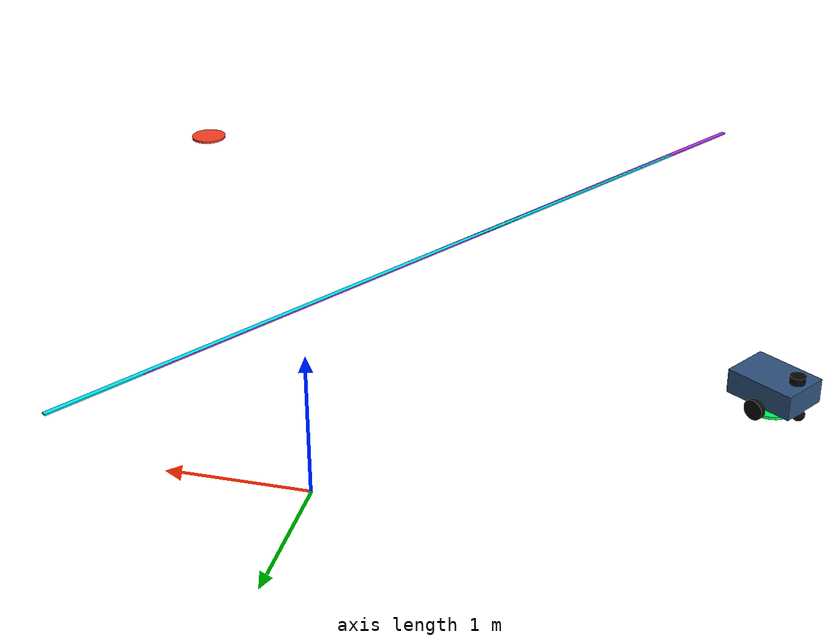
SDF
<sdf version="1.6">
 <world name="myworld2">
  <gravity>0 0 -9.8</gravity>
  <physics default="0" name="default_physics" type="ode">
   <max_step_size>0.001</max_step_size>
   <real_time_factor>1</real_time_factor>
   <real_time_update_rate>1000</real_time_update_rate>
  </physics>
  <plugin filename="ignition-gazebo-physics-system" name="ignition::gazebo::systems::Physics"/>
  <plugin filename="ignition-gazebo-user-commands-system" name="ignition::gazebo::systems::UserCommands"/>
  <plugin filename="ignition-gazebo-scene-broadcaster-system" name="ignition::gazebo::systems::SceneBroadcaster"/>
  <plugin filename="ignition-gazebo-contact-system" name="ignition::gazebo::systems::Contact"/>
  <plugin filename="libignition-gazebo-sensors-system.so" name="ignition::gazebo::systems::Sensors">
   <render_engine>ogre2</render_engine>
  </plugin>
  <plugin filename="libignition-gazebo-imu-system.so" name="ignition::gazebo::systems::Imu"/>
  <model name="fixed_path_demo_lane">
   <static>true</static>
   <link name="lane_visuals">
    <visual name="center_line">
     <pose>0.0 -3.55 0.015 0 0 -0.5838703956621151</pose>
     <geometry><box><size>0.03 6.7119296778 0.01</size></box></geometry>
     <material>
      <ambient>0.0 0.55 1.0 1.0</ambient>
      <diffuse>0.0 0.55 1.0 1.0</diffuse>
      <emissive>0.0 0.25 0.8 1.0</emissive>
     </material>
    </visual>
    <visual name="left_boundary">
     <pose>0.2205029062 -3.2162658717 0.016 0 0 -0.5838703956621151</pose>
     <geometry><box><size>0.04 6.7119296778 0.012</size></box></geometry>
     <material>
      <ambient>0.0 0.95 1.0 1.0</ambient>
      <diffuse>0.0 0.95 1.0 1.0</diffuse>
      <emissive>0.0 0.5 0.8 1.0</emissive>
     </material>
    </visual>
    <visual name="right_boundary">
     <pose>-0.2205029062 -3.8837341283 0.016 0 0 -0.5838703956621151</pose>
     <geometry><box><size>0.04 6.7119296778 0.012</size></box></geometry>
     <material>
      <ambient>0.75 0.2 1.0 1.0</ambient>
      <diffuse>0.75 0.2 1.0 1.0</diffuse>
      <emissive>0.4 0.05 0.8 1.0</emissive>
     </material>
    </visual>
    <visual name="start_marker">
     <pose>-2.8 -1.7 0.02 0 0 0</pose>
     <geometry><cylinder><radius>0.16</radius><length>0.02</length></cylinder></geometry>
     <material>
      <ambient>0.0 1.0 0.35 1.0</ambient>
      <diffuse>0.0 1.0 0.35 1.0</diffuse>
      <emissive>0.0 0.5 0.15 1.0</emissive>
     </material>
    </visual>
    <visual name="goal_marker">
     <pose>2.8 -5.4 0.02 0 0 0</pose>
     <geometry><cylinder><radius>0.16</radius><length>0.02</length></cylinder></geometry>
     <material>
      <ambient>1.0 0.25 0.15 1.0</ambient>
      <diffuse>1.0 0.25 0.15 1.0</diffuse>
      <emissive>0.6 0.1 0.05 1.0</emissive>
     </material>
    </visual>
   </link>
  </model>
  <include>
   <uri>model://diffbot</uri>
   <name>diffbot</name>
   <pose>-2.8 -1.7 0.01 0 0 2.557722257927678</pose>
  </include>
  <light name="Warehouse_CeilingLight_003" type="point">
   <pose>0 0 9 0 0 0</pose>
   <diffuse>0.5 0.5 0.5 1</diffuse>
   <specular>0.2 0.2 0.2 1</specular>
   <attenuation>
    <range>80</range>
    <constant>0.3</constant>
    <linear>0.01</linear>
    <quadratic>0.001</quadratic>
   </attenuation>
   <direction>0.1 0.1 -1</direction>
  </light>
 </world>
</sdf>

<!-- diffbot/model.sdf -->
<sdf version="1.8">
  <!-- Adapted from gazebosim/ros_gz ros_gz_sim_demos/models/vehicle/model.sdf for Nav2 simulation. -->
  <model name="myworld2_diffbot">
    <pose>0 0 0 0 0 0</pose>

    <link name="base_footprint"/>

    <link name="base_link">
      <pose>0 0 0.18 0 0 0</pose>
      <inertial>
        <mass>4.0</mass>
        <inertia>
          <ixx>0.08</ixx>
          <ixy>0</ixy>
          <ixz>0</ixz>
          <iyy>0.12</iyy>
          <iyz>0</iyz>
          <izz>0.16</izz>
        </inertia>
      </inertial>
      <collision name="base_collision">
        <geometry>
          <box>
            <size>0.52 0.36 0.18</size>
          </box>
        </geometry>
      </collision>
      <visual name="base_visual">
        <geometry>
          <box>
            <size>0.52 0.36 0.18</size>
          </box>
        </geometry>
        <material>
          <ambient>0.18 0.32 0.50 1</ambient>
          <diffuse>0.18 0.32 0.50 1</diffuse>
          <specular>0.08 0.08 0.08 1</specular>
        </material>
      </visual>
    </link>

    <joint name="base_joint" type="fixed">
      <parent>base_footprint</parent>
      <child>base_link</child>
      <pose>0 0 0.18 0 0 0</pose>
    </joint>

    <link name="wheel_left_link">
      <pose>0 0.205 0.075 -1.5707 0 0</pose>
      <inertial>
        <mass>0.45</mass>
        <inertia>
          <ixx>0.0012</ixx>
          <ixy>0</ixy>
          <ixz>0</ixz>
          <iyy>0.0012</iyy>
          <iyz>0</iyz>
          <izz>0.0018</izz>
        </inertia>
      </inertial>
      <collision name="wheel_left_collision">
        <geometry>
          <cylinder>
            <radius>0.075</radius>
            <length>0.04</length>
          </cylinder>
        </geometry>
        <surface>
          <friction>
            <ode>
              <mu>100000</mu>
              <mu2>100000</mu2>
            </ode>
          </friction>
        </surface>
      </collision>
      <visual name="wheel_left_visual">
        <geometry>
          <cylinder>
            <radius>0.075</radius>
            <length>0.04</length>
          </cylinder>
        </geometry>
        <material>
          <ambient>0.03 0.03 0.03 1</ambient>
          <diffuse>0.03 0.03 0.03 1</diffuse>
        </material>
      </visual>
    </link>

    <link name="wheel_right_link">
      <pose>0 -0.205 0.075 -1.5707 0 0</pose>
      <inertial>
        <mass>0.45</mass>
        <inertia>
          <ixx>0.0012</ixx>
          <ixy>0</ixy>
          <ixz>0</ixz>
          <iyy>0.0012</iyy>
          <iyz>0</iyz>
          <izz>0.0018</izz>
        </inertia>
      </inertial>
      <collision name="wheel_right_collision">
        <geometry>
          <cylinder>
            <radius>0.075</radius>
            <length>0.04</length>
          </cylinder>
        </geometry>
        <surface>
          <friction>
            <ode>
              <mu>100000</mu>
              <mu2>100000</mu2>
            </ode>
          </friction>
        </surface>
      </collision>
      <visual name="wheel_right_visual">
        <geometry>
          <cylinder>
            <radius>0.075</radius>
            <length>0.04</length>
          </cylinder>
        </geometry>
        <material>
          <ambient>0.03 0.03 0.03 1</ambient>
          <diffuse>0.03 0.03 0.03 1</diffuse>
        </material>
      </visual>
    </link>

    <joint name="wheel_left_joint" type="revolute">
      <parent>base_link</parent>
      <child>wheel_left_link</child>
      <axis>
        <xyz>0 0 1</xyz>
        <limit>
          <lower>-1.79769e+308</lower>
          <upper>1.79769e+308</upper>
        </limit>
      </axis>
    </joint>

    <joint name="wheel_right_joint" type="revolute">
      <parent>base_link</parent>
      <child>wheel_right_link</child>
      <axis>
        <xyz>0 0 1</xyz>
        <limit>
          <lower>-1.79769e+308</lower>
          <upper>1.79769e+308</upper>
        </limit>
      </axis>
    </joint>

    <link name="rear_caster_link">
      <pose>-0.22 0 0.045 0 0 0</pose>
      <inertial>
        <mass>0.12</mass>
        <inertia>
          <ixx>0.0001</ixx>
          <ixy>0</ixy>
          <ixz>0</ixz>
          <iyy>0.0001</iyy>
          <iyz>0</iyz>
          <izz>0.0001</izz>
        </inertia>
      </inertial>
      <collision name="caster_collision">
        <geometry>
          <sphere>
            <radius>0.045</radius>
          </sphere>
        </geometry>
      </collision>
      <visual name="caster_visual">
        <geometry>
          <sphere>
            <radius>0.045</radius>
          </sphere>
        </geometry>
        <material>
          <ambient>0.03 0.03 0.03 1</ambient>
          <diffuse>0.03 0.03 0.03 1</diffuse>
        </material>
      </visual>
    </link>

    <joint name="rear_caster_joint" type="fixed">
      <parent>base_link</parent>
      <child>rear_caster_link</child>
    </joint>

    <link name="front_caster_link">
      <pose>0.22 0 0.045 0 0 0</pose>
      <inertial>
        <mass>0.12</mass>
        <inertia>
          <ixx>0.0001</ixx>
          <ixy>0</ixy>
          <ixz>0</ixz>
          <iyy>0.0001</iyy>
          <iyz>0</iyz>
          <izz>0.0001</izz>
        </inertia>
      </inertial>
      <collision name="front_caster_collision">
        <geometry>
          <sphere>
            <radius>0.045</radius>
          </sphere>
        </geometry>
      </collision>
      <visual name="front_caster_visual">
        <geometry>
          <sphere>
            <radius>0.045</radius>
          </sphere>
        </geometry>
        <material>
          <ambient>0.03 0.03 0.03 1</ambient>
          <diffuse>0.03 0.03 0.03 1</diffuse>
        </material>
      </visual>
    </link>

    <joint name="front_caster_joint" type="fixed">
      <parent>base_link</parent>
      <child>front_caster_link</child>
    </joint>

    <link name="base_scan">
      <pose>0.18 0 0.31 0 0 0</pose>
      <collision name="lidar_collision">
        <geometry>
          <cylinder>
            <radius>0.055</radius>
            <length>0.055</length>
          </cylinder>
        </geometry>
      </collision>
      <visual name="lidar_visual">
        <geometry>
          <cylinder>
            <radius>0.055</radius>
            <length>0.055</length>
          </cylinder>
        </geometry>
        <material>
          <ambient>0.02 0.02 0.02 1</ambient>
          <diffuse>0.02 0.02 0.02 1</diffuse>
        </material>
      </visual>
      <sensor name="gpu_lidar" type="gpu_lidar">
        <topic>scan</topic>
        <ignition_frame_id>base_scan</ignition_frame_id>
        <update_rate>10</update_rate>
        <lidar>
          <scan>
            <horizontal>
              <samples>720</samples>
              <resolution>1</resolution>
              <min_angle>-3.14159</min_angle>
              <max_angle>3.14159</max_angle>
            </horizontal>
          </scan>
          <range>
            <min>0.12</min>
            <max>10.0</max>
            <resolution>0.01</resolution>
          </range>
          <noise>
            <type>gaussian</type>
            <mean>0.0</mean>
            <stddev>0.01</stddev>
          </noise>
        </lidar>
        <always_on>true</always_on>
        <visualize>true</visualize>
      </sensor>
    </link>

    <joint name="lidar_joint" type="fixed">
      <parent>base_link</parent>
      <child>base_scan</child>
      <pose>0.18 0 0.31 0 0 0</pose>
    </joint>

    <link name="imu_link">
      <pose>0 0 0.26 0 0 0</pose>
      <sensor name="imu" type="imu">
        <always_on>true</always_on>
        <update_rate>100</update_rate>
        <topic>imu</topic>
        <ignition_frame_id>imu_link</ignition_frame_id>
      </sensor>
    </link>

    <joint name="imu_joint" type="fixed">
      <parent>base_link</parent>
      <child>imu_link</child>
      <pose>0 0 0.26 0 0 0</pose>
    </joint>

    <plugin
      filename="ignition-gazebo-diff-drive-system"
      name="ignition::gazebo::systems::DiffDrive">
      <left_joint>wheel_left_joint</left_joint>
      <right_joint>wheel_right_joint</right_joint>
      <wheel_separation>0.41</wheel_separation>
      <wheel_radius>0.075</wheel_radius>
      <topic>cmd_vel</topic>
      <max_linear_acceleration>1.0</max_linear_acceleration>
      <min_linear_acceleration>-1.0</min_linear_acceleration>
      <max_angular_acceleration>2.5</max_angular_acceleration>
      <min_angular_acceleration>-2.5</min_angular_acceleration>
      <max_linear_velocity>1.5</max_linear_velocity>
      <min_linear_velocity>-1.5</min_linear_velocity>
      <max_angular_velocity>1.5</max_angular_velocity>
      <min_angular_velocity>-1.5</min_angular_velocity>
    </plugin>

    <plugin
      filename="ignition-gazebo-odometry-publisher-system"
      name="ignition::gazebo::systems::OdometryPublisher">
      <odom_publish_frequency>100</odom_publish_frequency>
      <odom_topic>/odom</odom_topic>
      <odom_frame>odom</odom_frame>
      <robot_base_frame>base_footprint</robot_base_frame>
      <tf_topic>/odom/tf</tf_topic>
      <dimensions>2</dimensions>
    </plugin>

    <plugin
      filename="ignition-gazebo-joint-state-publisher-system"
      name="ignition::gazebo::systems::JointStatePublisher">
      <topic>joint_states</topic>
      <joint_name>wheel_left_joint</joint_name>
      <joint_name>wheel_right_joint</joint_name>
    </plugin>
  </model>
</sdf>
